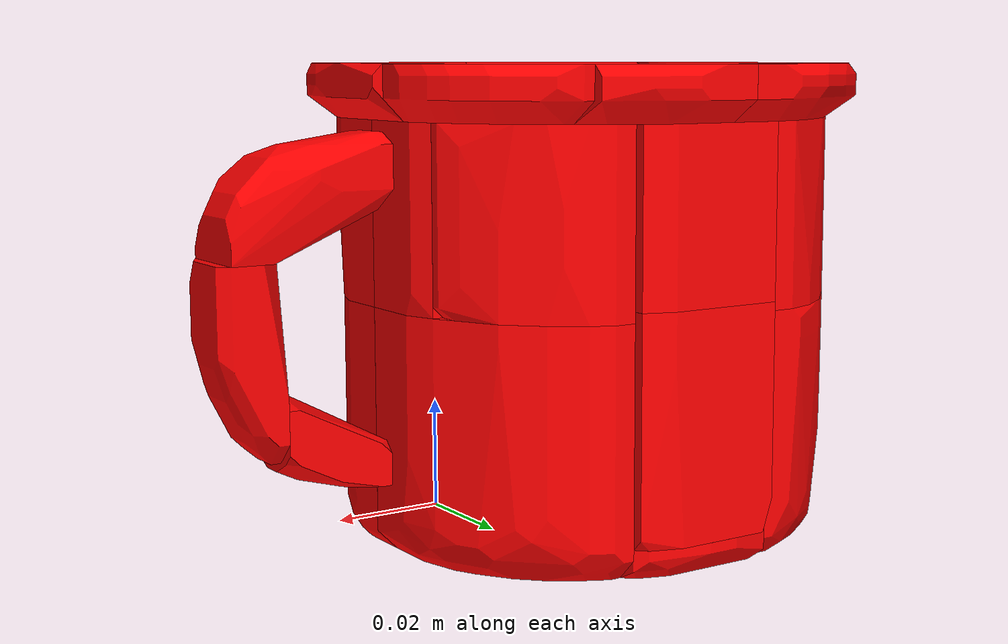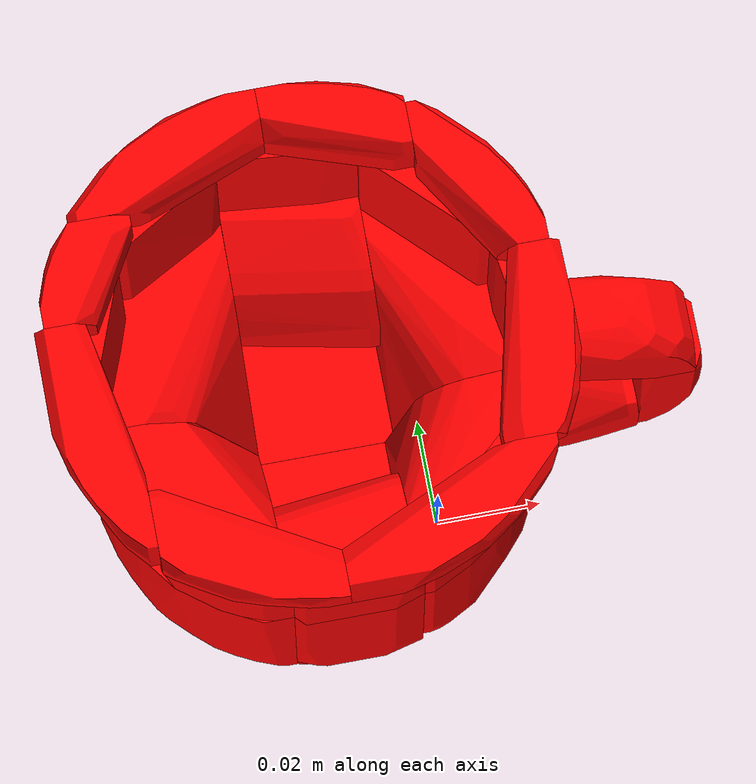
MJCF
<?xml version="1.0" encoding="utf-8"?>
<mujoco>
    <asset>
        <mesh file="ycb/025_mug/025_mug1.stl" name="mug1"></mesh>
        <mesh file="ycb/025_mug/025_mug2.stl" name="mug2"></mesh>
        <mesh file="ycb/025_mug/025_mug3.stl" name="mug3"></mesh>
        <mesh file="ycb/025_mug/025_mug4.stl" name="mug4"></mesh>
        <mesh file="ycb/025_mug/025_mug5.stl" name="mug5"></mesh>
        <mesh file="ycb/025_mug/025_mug6.stl" name="mug6"></mesh>
        <mesh file="ycb/025_mug/025_mug7.stl" name="mug7"></mesh>
        <mesh file="ycb/025_mug/025_mug8.stl" name="mug8"></mesh>
        <mesh file="ycb/025_mug/025_mug9.stl" name="mug9"></mesh>
        <mesh file="ycb/025_mug/025_mug10.stl" name="mug10"></mesh>
        <mesh file="ycb/025_mug/025_mug11.stl" name="mug11"></mesh>
        <mesh file="ycb/025_mug/025_mug12.stl" name="mug12"></mesh>
        <mesh file="ycb/025_mug/025_mug13.stl" name="mug13"></mesh>
        <mesh file="ycb/025_mug/025_mug14.stl" name="mug14"></mesh>
        <mesh file="ycb/025_mug/025_mug15.stl" name="mug15"></mesh>
        <mesh file="ycb/025_mug/025_mug16.stl" name="mug16"></mesh>
        <mesh file="ycb/025_mug/025_mug17.stl" name="mug17"></mesh>
        <mesh file="ycb/025_mug/025_mug18.stl" name="mug18"></mesh>
        <mesh file="ycb/025_mug/025_mug19.stl" name="mug19"></mesh>
        <mesh file="ycb/025_mug/025_mug20.stl" name="mug20"></mesh>
        <mesh file="ycb/025_mug/025_mug21.stl" name="mug21"></mesh>
        <mesh file="ycb/025_mug/025_mug22.stl" name="mug22"></mesh>
        <mesh file="ycb/025_mug/025_mug23.stl" name="mug23"></mesh>
        <mesh file="ycb/025_mug/025_mug24.stl" name="mug24"></mesh>
        <mesh file="ycb/025_mug/025_mug25.stl" name="mug25"></mesh>
        <mesh file="ycb/025_mug/025_mug26.stl" name="mug26"></mesh>
        <mesh file="ycb/025_mug/025_mug27.stl" name="mug27"></mesh>
        <mesh file="ycb/025_mug/025_mug28.stl" name="mug28"></mesh>
        <mesh file="ycb/025_mug/025_mug29.stl" name="mug29"></mesh>
        <material name="block_mat" rgba="1.0 0 0 1.0" specular="0.25" shininess="0.10" reflectance="0.10"></material>
    </asset>
    <worldbody>
        <body>
            <geom type="mesh" mesh="mug1" material="block_mat"></geom>
            <geom type="mesh" mesh="mug2" material="block_mat"></geom>
            <geom type="mesh" mesh="mug3" material="block_mat"></geom>
            <geom type="mesh" mesh="mug4" material="block_mat"></geom>
            <geom type="mesh" mesh="mug5" material="block_mat"></geom>
            <geom type="mesh" mesh="mug6" material="block_mat"></geom>
            <geom type="mesh" mesh="mug7" material="block_mat"></geom>
            <geom type="mesh" mesh="mug8" material="block_mat"></geom>
            <geom type="mesh" mesh="mug9" material="block_mat"></geom>
            <geom type="mesh" mesh="mug10" material="block_mat"></geom>
            <geom type="mesh" mesh="mug11" material="block_mat"></geom>
            <geom type="mesh" mesh="mug12" material="block_mat"></geom>
            <geom type="mesh" mesh="mug13" material="block_mat"></geom>
            <geom type="mesh" mesh="mug14" material="block_mat"></geom>
            <geom type="mesh" mesh="mug15" material="block_mat"></geom>
            <geom type="mesh" mesh="mug16" material="block_mat"></geom>
            <geom type="mesh" mesh="mug17" material="block_mat"></geom>
            <geom type="mesh" mesh="mug18" material="block_mat"></geom>
            <geom type="mesh" mesh="mug19" material="block_mat"></geom>
            <geom type="mesh" mesh="mug20" material="block_mat"></geom>
            <geom type="mesh" mesh="mug21" material="block_mat"></geom>
            <geom type="mesh" mesh="mug22" material="block_mat"></geom>
            <geom type="mesh" mesh="mug23" material="block_mat"></geom>
            <geom type="mesh" mesh="mug24" material="block_mat"></geom>
            <geom type="mesh" mesh="mug25" material="block_mat"></geom>
            <geom type="mesh" mesh="mug26" material="block_mat"></geom>
            <geom type="mesh" mesh="mug27" material="block_mat"></geom>
            <geom type="mesh" mesh="mug28" material="block_mat"></geom>
            <geom type="mesh" mesh="mug29" material="block_mat"></geom>
            <joint type="free"></joint>
        </body>
    </worldbody>
</mujoco>
